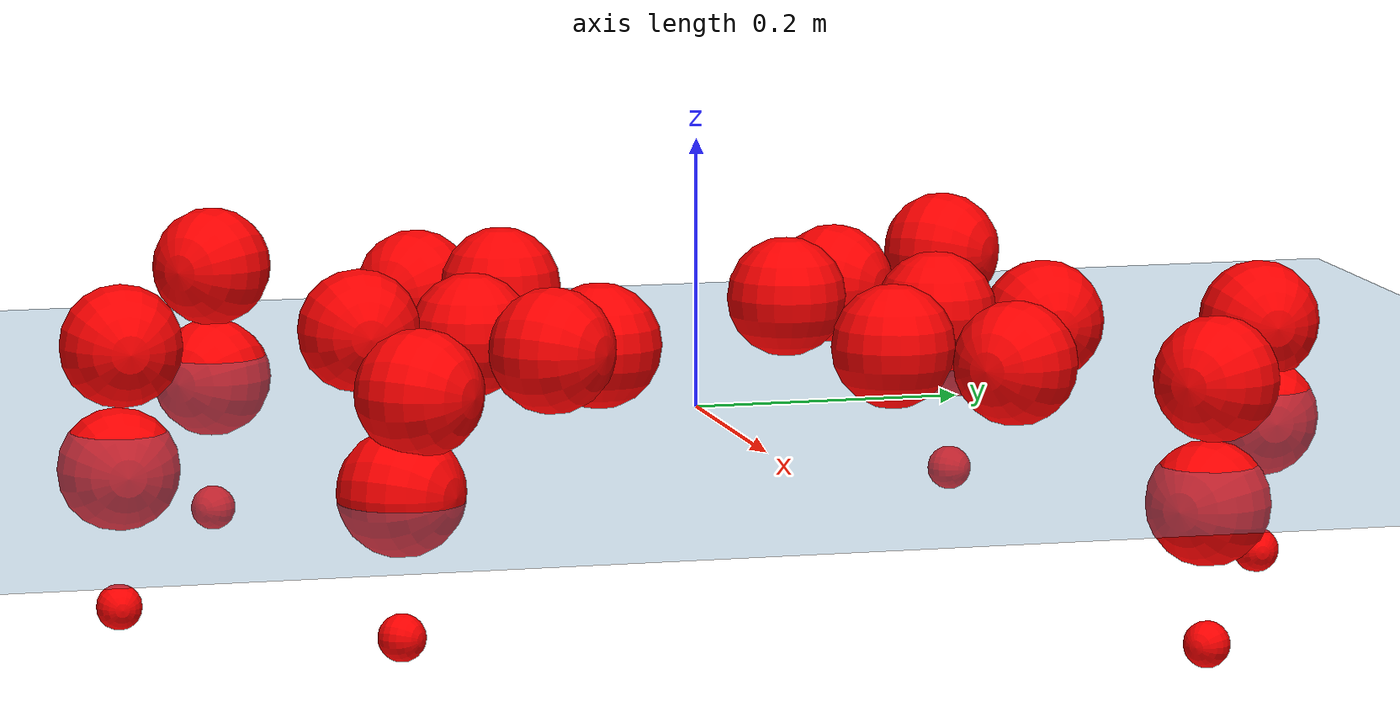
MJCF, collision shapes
<mujoco model="Golem">
  <compiler angle="radian" assetdir="assets" balanceinertia="true" inertiafromgeom="false"/>

  <option timestep="0.005" density="1.2" viscosity="2e-05"/>

  <size nkey="1"/>

  <visual>
    <quality shadowsize="8192"/>
    <map shadowclip="0.5"/>
  </visual>

  <default>
    <default class="/">
      <joint armature="0.01" damping="0.01" frictionloss="0.01"/>
      <geom contype="0" conaffinity="0" group="1" solref="-1000 -80"/>
      <site size="0.01 0.005 0.005" group="5"/>
      <general forcelimited="true" biastype="affine" gainprm="25" biasprm="0 -25 -0.5"/>
      <default class="visual">
        <geom type="mesh" group="2"/>
      </default>
      <default class="collision">
        <geom group="3"/>
      </default>
      <default class="foot">
        <geom size="0.01 0 0" condim="6" group="4" priority="1" solimp="0.015 1 0.01"/>
      </default>
      <default class="reward_collision_sphere">
        <geom group="5" rgba="1 0 0 1"/>
      </default>
    </default>
  </default>

  <asset>
    <texture type="skybox" colorspace="auto" name="//unnamed_texture_0" builtin="gradient" rgb1="0.95 0.95 0.95" rgb2="0.95 0.95 0.95" width="100" height="600"/>
    <texture type="2d" colorspace="auto" name="texplane" builtin="checker" rgb1="0.345 0.575 0.748" rgb2="0.345 0.575 0.748" markrgb="1 1 1" width="512" height="512"/>
    <material name="MatPlane" class="/" texture="texplane" texuniform="true" texrepeat="2 2" specular="0.9"/>
    <mesh name="body" class="/" file="body.stl" scale="0.001 0.001 0.001"/>
    <mesh name="coxa" class="/" file="coxa.stl" scale="0.001 0.001 0.001"/>
    <mesh name="femur" class="/" file="femur.stl" scale="0.001 0.001 0.001"/>
    <mesh name="tibia" class="/" file="tibia.stl" scale="0.001 0.001 0.001"/>
    <mesh name="tarsus" class="/" file="tarsus.stl" scale="0.001 0.001 0.001"/>
  </asset>

  <worldbody>
    <geom name="floor" class="/" size="100 100 0.125" type="plane" group="0" material="MatPlane"/>
    <light name="toplight_shadow" class="/" pos="0 0 5" dir="0.0990148 0.0990148 -0.990148" type="directional" ambient="0.04 0.04 0.04" diffuse="0.55 0.55 0.55" specular="0.12 0.12 0.12"/>
    <light name="toplight_fill" class="/" pos="0 0 5" dir="0.0990148 0.0990148 -0.990148" type="directional" castshadow="false" ambient="0.04 0.04 0.04" diffuse="0.3 0.3 0.3" specular="0.08 0.08 0.08"/>
    <body name="trunk" pos="0.00796694 0.00106667 0.00605327" quat="1 -0.000674931 -3.33354e-05 0.0001215">
      <inertial pos="0.00137771 0.00314743 0.0114103" quat="0.99828 -0.00591034 0.0445416 -0.0376559" mass="5.73255" diaginertia="0.00858285 0.0872934 0.00680633"/>
      <joint name="//unnamed_joint_0" type="free"/>
      <geom name="//unnamed_geom_1" class="/" pos="0 0 0.0585014" quat="1 0 0 0" type="mesh" rgba="0.9 0.9 0.9 1" mesh="body"/>
      <site name="imu" class="/" pos="0.0964051 0.0190345 0.119583" size="0.0113479"/>
      <camera name="track" class="/" pos="0 -3.07816 0" quat="0.707107 0.707107 0 0" mode="trackcom"/>
      <camera name="ego_camera" class="/" pos="0.123655 0 0.0914084" quat="-0.5 -0.5 0.5 0.5"/>
      <body name="coxa_RR" pos="-0.168764 -0.136847 0.0664299" quat="0.382752 -1.2685e-05 0.000770353 -0.923851">
        <inertial pos="0.00393907 0.00115719 0.00515949" quat="0.99931 -0.00601912 0.033447 0.0149855" mass="0.328474" diaginertia="0.00751899 0.094883 0.00714532"/>
        <joint name="coxa_joint_RR" class="/" pos="0 0 0" axis="0.00901821 0.0316209 -0.999459" range="-3.03662 2.90588" armature="0.0146238" damping="0.0152007" frictionloss="0.0151115"/>
        <geom name="//unnamed_geom_2" class="/" type="mesh" rgba="0.2 0.2 0.2 1" mesh="coxa"/>
        <geom name="//unnamed_geom_3" class="reward_collision_sphere" size="0.0453914" pos="-0.0285358 0 0"/>
        <body name="femur_RR" pos="0.0558527 -0.0134376 -0.0101706" quat="0.50041 -0.499923 0.49994 0.499727">
          <inertial pos="0.00450618 -0.0114557 -0.012992" quat="0.999954 0.00920256 -0.00219887 -0.0015256" mass="0.292073" diaginertia="0.00702245 0.0831319 0.00553093"/>
          <joint name="femur_joint_RR" class="/" pos="0 0 0" axis="-0.00353815 -0.0152619 -0.999877" stiffness="0.0133368" range="-3.1714 3.12828" armature="0.00925148" damping="0" frictionloss="0.00386478"/>
          <geom name="//unnamed_geom_4" class="/" type="mesh" rgba="0.9 0.9 0.9 1" mesh="femur"/>
          <geom name="//unnamed_geom_5" class="reward_collision_sphere" size="0.0453914"/>
          <body name="tibia_RR" pos="-0.00521368 -0.177741 0.0127981" quat="0.0001313 1 -5.07904e-05 -6.02926e-05">
            <inertial pos="-0.0063736 0.0119637 -0.00186057" quat="0.999999 -0.000168953 -0.000818863 -0.000895985" mass="0.277856" diaginertia="0.00795572 0.089153 0.00647169"/>
            <joint name="tibia_joint_RR" class="/" pos="0 0 0" axis="0.00933504 0.00665196 0.999934" range="-3.1318 3.12655" armature="0.0113964" damping="0" frictionloss="0.0155174"/>
            <geom name="//unnamed_geom_6" class="/" type="mesh" rgba="0.2 0.2 0.2 1" mesh="tibia"/>
            <geom name="//unnamed_geom_7" class="reward_collision_sphere" size="0.0453914"/>
            <body name="tarsus_RR" pos="0.0863555 0.000604411 6.70885e-05" quat="1 0.000102151 8.49531e-05 7.61532e-06">
              <inertial pos="0.0643324 0.000397646 0.000541037" quat="0.513138 0.518181 0.487929 0.479691" mass="0.261725" diaginertia="0.00672354 0.0898454 0.00629419"/>
              <joint name="tarsus_joint_RR" class="/" pos="0 0 0" axis="-0.00712466 -0.0154298 0.999856" stiffness="0.0021796" range="-2.88166 2.87074" armature="0.0115469" damping="0" frictionloss="0.0119662"/>
              <geom name="//unnamed_geom_8" class="/" type="mesh" rgba="0.9 0.9 0.9 1" mesh="tarsus"/>
              <geom name="foot_1" class="foot" size="0.00814586" pos="0.106533 0 0" quat="0 -0.707107 0 0.707107"/>
              <geom name="//unnamed_geom_10" class="reward_collision_sphere" size="0.0453914"/>
              <geom name="//unnamed_geom_11" class="reward_collision_sphere" size="0.0170218" pos="0.102253 0 0"/>
              <site name="foot_1" class="foot" pos="0.106533 0 0" quat="0 -0.707107 0 0.707107" size="0.0113479"/>
            </body>
          </body>
        </body>
      </body>
      <body name="coxa_RM" pos="0.0117643 -0.20443 0.0579639" quat="0.70553 -0.000471634 -0.00145171 -0.708679">
        <inertial pos="0.000495688 0.00692692 0.00163503" quat="0.998049 0.00293673 0.0596935 -0.0180844" mass="0.252929" diaginertia="0.00658495 0.0850013 0.00552159"/>
        <joint name="coxa_joint_RM" class="/" pos="0 0 0" axis="0.0158116 -0.00250331 -0.999872" stiffness="0.00263312" range="-3.09987 3.11184" armature="0.0121008" damping="0.00342906" frictionloss="0.011736"/>
        <geom name="//unnamed_geom_12" class="/" type="mesh" rgba="0.2 0.2 0.2 1" mesh="coxa"/>
        <geom name="//unnamed_geom_13" class="reward_collision_sphere" size="0.0453914" pos="-0.0285358 0 0"/>
        <body name="femur_RM" pos="0.0547812 -0.00203002 0.00546394" quat="0.503977 -0.500674 0.499212 0.496105">
          <inertial pos="0.0118449 0.0065759 0.0132593" quat="0.999998 -0.000570254 -0.000112312 0.00202195" mass="0.253583" diaginertia="0.00781081 0.085795 0.00591448"/>
          <joint name="femur_joint_RM" class="/" pos="0 0 0" axis="0.028311 -0.0128176 -0.999517" range="-3.19323 2.90869" armature="0.00913191" damping="0.0106878" frictionloss="0.0175388"/>
          <geom name="//unnamed_geom_14" class="/" type="mesh" rgba="0.9 0.9 0.9 1" mesh="femur"/>
          <geom name="//unnamed_geom_15" class="reward_collision_sphere" size="0.0453914"/>
          <body name="tibia_RM" pos="0.00893083 -0.173086 -0.0128933" quat="-0.00151299 0.999996 0.00244352 -0.000417213">
            <inertial pos="-0.00138337 -0.00304832 0.00028765" quat="1 0.000547668 -0.000208632 0.000432414" mass="0.276515" diaginertia="0.00661071 0.0746615 0.00597201"/>
            <joint name="tibia_joint_RM" class="/" pos="0 0 0" axis="-0.0385876 0.0437399 0.998297" stiffness="0.00917357" range="-3.22757 3.34743" armature="0.0117915" damping="0.0387466" frictionloss="0.00835532"/>
            <geom name="//unnamed_geom_16" class="/" type="mesh" rgba="0.2 0.2 0.2 1" mesh="tibia"/>
            <geom name="//unnamed_geom_17" class="reward_collision_sphere" size="0.0453914"/>
            <body name="tarsus_RM" pos="0.0923367 2.38618e-05 0.0114179" quat="1 0.00041399 0.000149687 -0.000172284">
              <inertial pos="0.0598168 0.00189835 -0.00800596" quat="0.468201 0.517295 0.488966 0.523551" mass="0.280134" diaginertia="0.00673515 0.081796 0.00704142"/>
              <joint name="tarsus_joint_RM" class="/" pos="0 0 0" axis="0.0181398 0.00832625 0.999801" stiffness="0.0245899" range="-2.92776 3.38323" armature="0.01086" damping="0.00138861" frictionloss="0.0128473"/>
              <geom name="//unnamed_geom_18" class="/" type="mesh" rgba="0.9 0.9 0.9 1" mesh="tarsus"/>
              <geom name="foot_2" class="foot" size="0.00982642" pos="0.106533 0 0" quat="0 -0.707107 0 0.707107"/>
              <geom name="//unnamed_geom_20" class="reward_collision_sphere" size="0.0453914"/>
              <geom name="//unnamed_geom_21" class="reward_collision_sphere" size="0.0170218" pos="0.102253 0 0"/>
              <site name="foot_2" class="foot" pos="0.106533 0 0" quat="0 -0.707107 0 0.707107" size="0.0113479"/>
            </body>
          </body>
        </body>
      </body>
      <body name="coxa_RF" pos="0.167863 -0.133131 0.0689045" quat="0.924186 -0.00206276 -0.00254696 -0.381928">
        <inertial pos="-0.00414534 0.0140118 -0.00197938" quat="0.999869 0.00515978 0.00684188 -0.0136965" mass="0.277583" diaginertia="0.00746659 0.0773439 0.00570294"/>
        <joint name="coxa_joint_RF" class="/" pos="0 0 0" axis="0.0191959 0.00176283 -0.999814" stiffness="0.015037" range="-3.13815 2.97428" armature="0.0114843" damping="0.051549" frictionloss="0.0105342"/>
        <geom name="//unnamed_geom_22" class="/" type="mesh" rgba="0.2 0.2 0.2 1" mesh="coxa"/>
        <geom name="//unnamed_geom_23" class="reward_collision_sphere" size="0.0453914" pos="-0.0285358 0 0"/>
        <body name="femur_RF" pos="0.0443854 0.00545394 0.00652507" quat="0.499949 -0.500086 0.499574 0.50039">
          <inertial pos="-0.000946342 -0.000186699 -0.0094145" quat="0.999889 0.0103159 -0.00964554 -0.00483939" mass="0.298532" diaginertia="0.00765261 0.0924603 0.00581742"/>
          <joint name="femur_joint_RF" class="/" pos="0 0 0" axis="-0.00493003 -0.00160413 -0.999987" range="-3.37125 3.09459" armature="0.0124893" damping="0.0190371" frictionloss="0.0162915"/>
          <geom name="//unnamed_geom_24" class="/" type="mesh" rgba="0.9 0.9 0.9 1" mesh="femur"/>
          <geom name="//unnamed_geom_25" class="reward_collision_sphere" size="0.0453914"/>
          <body name="tibia_RF" pos="0.00783328 -0.167187 -0.00541119" quat="-3.33832e-05 1 -0.000693675 -0.000554555">
            <inertial pos="-0.00803874 0.00585621 -0.000499639" quat="0.998043 0.0574175 0.00951126 -0.022872" mass="0.269134" diaginertia="0.00802458 0.0947606 0.00624008"/>
            <joint name="tibia_joint_RF" class="/" pos="0 0 0" axis="-0.0135583 -0.0432181 0.998974" range="-3.14532 3.1288" armature="0.0103189" damping="0" frictionloss="0.0112837"/>
            <geom name="//unnamed_geom_26" class="/" type="mesh" rgba="0.2 0.2 0.2 1" mesh="tibia"/>
            <geom name="//unnamed_geom_27" class="reward_collision_sphere" size="0.0453914"/>
            <body name="tarsus_RF" pos="0.0705567 0.000760954 0.0140647" quat="0.999995 0.00020308 0.00104208 -0.00308187">
              <inertial pos="0.052088 0.010283 -0.00341691" quat="0.499112 0.486274 0.511321 0.502967" mass="0.343273" diaginertia="0.00806535 0.0985602 0.00600917"/>
              <joint name="tarsus_joint_RF" class="/" pos="0 0 0" axis="0.0431511 -0.022711 0.99881" stiffness="0.0079266" range="-2.96075 3.13105" armature="0.0111263" damping="0" frictionloss="0.0131987"/>
              <geom name="//unnamed_geom_28" class="/" type="mesh" rgba="0.9 0.9 0.9 1" mesh="tarsus"/>
              <geom name="foot_3" class="foot" size="0.0107257" pos="0.106533 0 0" quat="0 -0.707107 0 0.707107"/>
              <geom name="//unnamed_geom_30" class="reward_collision_sphere" size="0.0453914"/>
              <geom name="//unnamed_geom_31" class="reward_collision_sphere" size="0.0170218" pos="0.102253 0 0"/>
              <site name="foot_3" class="foot" pos="0.106533 0 0" quat="0 -0.707107 0 0.707107" size="0.0113479"/>
            </body>
          </body>
        </body>
      </body>
      <body name="coxa_LR" pos="-0.172194 0.126933 0.0502711" quat="0.380441 -0.00121573 -6.32689e-05 0.924804">
        <inertial pos="0.0017181 0.00210661 -0.0102962" quat="1 -0.000345841 -0.000132579 -0.000624533" mass="0.288329" diaginertia="0.00752318 0.0818869 0.00697925"/>
        <joint name="coxa_joint_LR" class="/" pos="0 0 0" axis="0.00213346 0.00332686 -0.999992" stiffness="0.0449214" range="-3.02784 3.06446" armature="0.0141676" damping="0.0298449" frictionloss="0.0181213"/>
        <geom name="//unnamed_geom_32" class="/" type="mesh" rgba="0.2 0.2 0.2 1" mesh="coxa"/>
        <geom name="//unnamed_geom_33" class="reward_collision_sphere" size="0.0453914" pos="-0.0285358 0 0"/>
        <body name="femur_LR" pos="0.0592426 0.00787217 -0.00177676" quat="0.49898 -0.500191 0.500657 0.500171">
          <inertial pos="-0.0109714 0.00502437 -0.00862254" quat="0.999793 -0.019941 0.000380044 -0.00391525" mass="0.336314" diaginertia="0.00762585 0.0862461 0.00631375"/>
          <joint name="femur_joint_LR" class="/" pos="0 0 0" axis="0.00655177 -0.0106661 0.999922" range="-2.8801 3.36914" armature="0.0180306" damping="0.0090602" frictionloss="0.0120714"/>
          <geom name="//unnamed_geom_34" class="/" type="mesh" rgba="0.9 0.9 0.9 1" mesh="femur"/>
          <geom name="//unnamed_geom_35" class="reward_collision_sphere" size="0.0453914"/>
          <body name="tibia_LR" pos="-0.00430427 -0.170001 -0.00246017" quat="-0.00236204 0.999995 5.28564e-05 0.00191181">
            <inertial pos="-0.00628565 0.00896144 -0.00194724" quat="0.999977 0.00204473 -0.00034298 -0.00645038" mass="0.254801" diaginertia="0.00745206 0.074455 0.00687911"/>
            <joint name="tibia_joint_LR" class="/" pos="0 0 0" axis="-0.0500809 -0.0171173 -0.998598" stiffness="0.0312162" range="-3.15537 3.34166" armature="0.0136711" damping="0" frictionloss="0.0121614"/>
            <geom name="//unnamed_geom_36" class="/" type="mesh" rgba="0.2 0.2 0.2 1" mesh="tibia"/>
            <geom name="//unnamed_geom_37" class="reward_collision_sphere" size="0.0453914"/>
            <body name="tarsus_LR" pos="0.0711878 0.00223961 0.00767639" quat="0.999983 -0.00537748 0.00101902 -0.0019594">
              <inertial pos="0.0671871 0.00956873 0.00328733" quat="0.499103 0.500129 0.500738 0.50003" mass="0.294903" diaginertia="0.00783152 0.0986824 0.00587423"/>
              <joint name="tarsus_joint_LR" class="/" pos="0 0 0" axis="-8.66327e-05 -0.00349176 -0.999994" stiffness="0.0353771" range="-3.1581 3.15372" armature="0.00854333" damping="0.00526022" frictionloss="0.00517591"/>
              <geom name="//unnamed_geom_38" class="/" type="mesh" rgba="0.9 0.9 0.9 1" mesh="tarsus"/>
              <geom name="foot_4" class="foot" size="0.0113611" pos="0.106533 0 0" quat="0.707107 0 -0.707107 0"/>
              <geom name="//unnamed_geom_40" class="reward_collision_sphere" size="0.0453914"/>
              <geom name="//unnamed_geom_41" class="reward_collision_sphere" size="0.0170218" pos="0.102253 0 0"/>
              <site name="foot_4" class="foot" pos="0.106533 0 0" quat="0.707107 0 -0.707107 0" size="0.0113479"/>
            </body>
          </body>
        </body>
      </body>
      <body name="coxa_LM" pos="0.00449682 0.207739 0.0597372" quat="0.70627 0.000285654 -0.000433129 0.707942">
        <inertial pos="-0.0106136 3.2376e-05 -0.00386206" quat="0.999794 -0.0183262 -0.000568808 0.00865357" mass="0.331732" diaginertia="0.00732024 0.0982017 0.00746597"/>
        <joint name="coxa_joint_LM" class="/" pos="0 0 0" axis="0.0101435 -0.0045483 -0.999938" range="-3.15199 3.13983" armature="0.0116743" damping="0.0378065" frictionloss="0.0153652"/>
        <geom name="//unnamed_geom_42" class="/" type="mesh" rgba="0.2 0.2 0.2 1" mesh="coxa"/>
        <geom name="//unnamed_geom_43" class="reward_collision_sphere" size="0.0453914" pos="-0.0285358 0 0"/>
        <body name="femur_LM" pos="0.0550349 -0.000489995 -0.00950728" quat="0.499761 -0.500137 0.499991 0.500111">
          <inertial pos="-0.00734157 0.00102651 0.00625637" quat="0.999839 -0.00424364 0.016989 -0.00383355" mass="0.276006" diaginertia="0.00819402 0.0775847 0.00499253"/>
          <joint name="femur_joint_LM" class="/" pos="0 0 0" axis="-0.0550814 0.0259795 0.998144" stiffness="0.00981958" range="-3.37487 3.24783" armature="0.0122146" damping="0.075624" frictionloss="0.0114917"/>
          <geom name="//unnamed_geom_44" class="/" type="mesh" rgba="0.9 0.9 0.9 1" mesh="femur"/>
          <geom name="//unnamed_geom_45" class="reward_collision_sphere" size="0.0453914"/>
          <body name="tibia_LM" pos="0.00676293 -0.169466 0.000149013" quat="0.00171794 0.999999 -0.000126032 -1.13411e-05">
            <inertial pos="0.0118492 0.000190746 0.000593527" quat="0.999837 0.00612978 0.00517697 0.0161999" mass="0.287006" diaginertia="0.00769683 0.0876209 0.00587312"/>
            <joint name="tibia_joint_LM" class="/" pos="0 0 0" axis="-0.00468181 -0.000345072 -0.999989" range="-3.20152 3.2471" armature="0.016062" damping="0" frictionloss="0.0191876"/>
            <geom name="//unnamed_geom_46" class="/" type="mesh" rgba="0.2 0.2 0.2 1" mesh="tibia"/>
            <geom name="//unnamed_geom_47" class="reward_collision_sphere" size="0.0453914"/>
            <body name="tarsus_LM" pos="0.0719921 -0.00168013 0.00394175" quat="0.999998 0.000192601 -0.00183776 -0.00018247">
              <inertial pos="0.0665663 -0.000614186 0.00737003" quat="0.53429 0.46784 0.510998 0.484293" mass="0.285641" diaginertia="0.00815846 0.0862087 0.00665414"/>
              <joint name="tarsus_joint_LM" class="/" pos="0 0 0" axis="-0.00763302 0.00236373 -0.999968" stiffness="0.00247315" range="-3.31844 3.13902" armature="0.00922762" damping="0" frictionloss="0.01127"/>
              <geom name="//unnamed_geom_48" class="/" type="mesh" rgba="0.9 0.9 0.9 1" mesh="tarsus"/>
              <geom name="foot_5" class="foot" size="0.00543238" pos="0.106533 0 0" quat="0.707107 0 -0.707107 0"/>
              <geom name="//unnamed_geom_50" class="reward_collision_sphere" size="0.0453914"/>
              <geom name="//unnamed_geom_51" class="reward_collision_sphere" size="0.0170218" pos="0.102253 0 0"/>
              <site name="foot_5" class="foot" pos="0.106533 0 0" quat="0.707107 0 -0.707107 0" size="0.0113479"/>
            </body>
          </body>
        </body>
      </body>
      <body name="coxa_LF" pos="0.166553 0.126376 0.0594391" quat="0.923074 0.000233921 -0.000743532 0.384621">
        <inertial pos="0.000136788 0.0128685 0.00316097" quat="0.998526 -0.0541025 0.00434105 -0.000141461" mass="0.233865" diaginertia="0.00641076 0.0738182 0.0054272"/>
        <joint name="coxa_joint_LF" class="/" pos="0 0 0" axis="-0.0102403 0.0328295 -0.999409" stiffness="0.0436234" range="-3.31275 3.14273" armature="0.00793772" damping="0" frictionloss="0.0169598"/>
        <geom name="//unnamed_geom_52" class="/" type="mesh" rgba="0.2 0.2 0.2 1" mesh="coxa"/>
        <geom name="//unnamed_geom_53" class="reward_collision_sphere" size="0.0453914" pos="-0.0285358 0 0"/>
        <body name="femur_LF" pos="0.0673357 0.00798807 -0.00564607" quat="0.50027 -0.50051 0.499085 0.500134">
          <inertial pos="0.00269002 -0.0076135 0.0106323" quat="0.999922 0.00649412 0.0013547 -0.0105355" mass="0.270806" diaginertia="0.00676584 0.0776961 0.00649139"/>
          <joint name="femur_joint_LF" class="/" pos="0 0 0" axis="-0.00324883 -0.0137552 0.9999" stiffness="0.0650092" range="-3.09746 3.13295" armature="0.00693334" damping="0.00848423" frictionloss="0.0121684"/>
          <geom name="//unnamed_geom_54" class="/" type="mesh" rgba="0.9 0.9 0.9 1" mesh="femur"/>
          <geom name="//unnamed_geom_55" class="reward_collision_sphere" size="0.0453914"/>
          <body name="tibia_LF" pos="-0.00121599 -0.158903 0.00338371" quat="0.000169582 1 -0.000233187 -0.000203321">
            <inertial pos="-0.0116895 -0.0117613 -0.0133591" quat="0.999819 -0.00234101 -0.0146384 -0.0118949" mass="0.296612" diaginertia="0.0079169 0.0793476 0.00539892"/>
            <joint name="tibia_joint_LF" class="/" pos="0 0 0" axis="0.0242744 -0.0034835 -0.999699" range="-3.30012 3.37326" armature="0.0124524" damping="0.0133765" frictionloss="0.015587"/>
            <geom name="//unnamed_geom_56" class="/" type="mesh" rgba="0.2 0.2 0.2 1" mesh="tibia"/>
            <geom name="//unnamed_geom_57" class="reward_collision_sphere" size="0.0453914"/>
            <body name="tarsus_LF" pos="0.0906319 -0.0075645 -0.00377363" quat="1 0.000351759 2.39848e-05 -0.000632031">
              <inertial pos="0.064996 0.00303535 -0.0116835" quat="0.457156 0.508311 0.516448 0.515664" mass="0.290747" diaginertia="0.00680867 0.0889472 0.00538958"/>
              <joint name="tarsus_joint_LF" class="/" pos="0 0 0" axis="-0.00036832 -0.00104802 -0.999999" range="-2.93754 3.38079" armature="0.00734437" damping="0" frictionloss="0.00762076"/>
              <geom name="//unnamed_geom_58" class="/" type="mesh" rgba="0.9 0.9 0.9 1" mesh="tarsus"/>
              <geom name="foot_6" class="foot" size="0.00808222" pos="0.106533 0 0" quat="0.707107 0 -0.707107 0"/>
              <geom name="//unnamed_geom_60" class="reward_collision_sphere" size="0.0453914"/>
              <geom name="//unnamed_geom_61" class="reward_collision_sphere" size="0.0170218" pos="0.102253 0 0"/>
              <site name="foot_6" class="foot" pos="0.106533 0 0" quat="0.707107 0 -0.707107 0" size="0.0113479"/>
            </body>
          </body>
        </body>
      </body>
    </body>
  </worldbody>

  <contact>
    <pair class="/" geom1="floor" geom2="foot_1" name="//unnamed_contact_0"/>
    <pair class="/" geom1="floor" geom2="foot_2" name="//unnamed_contact_1"/>
    <pair class="/" geom1="floor" geom2="foot_3" name="//unnamed_contact_2"/>
    <pair class="/" geom1="floor" geom2="foot_4" name="//unnamed_contact_3"/>
    <pair class="/" geom1="floor" geom2="foot_5" name="//unnamed_contact_4"/>
    <pair class="/" geom1="floor" geom2="foot_6" name="//unnamed_contact_5"/>
  </contact>

  <actuator>
    <general name="coxa_joint_RR" class="/" joint="coxa_joint_RR" forcerange="-8.98829 8.98829" gainprm="19.0215" biasprm="0 -19.0215 -0.567014"/>
    <general name="femur_joint_RR" class="/" joint="femur_joint_RR" forcerange="-8.71308 8.71308" gainprm="19.0215" biasprm="0 -19.0215 -0.567014"/>
    <general name="tibia_joint_RR" class="/" joint="tibia_joint_RR" forcerange="-8.30907 8.30907" gainprm="19.0215" biasprm="0 -19.0215 -0.567014"/>
    <general name="tarsus_joint_RR" class="/" joint="tarsus_joint_RR" forcerange="-8.28925 8.28925" gainprm="19.0215" biasprm="0 -19.0215 -0.567014"/>
    <general name="coxa_joint_RM" class="/" joint="coxa_joint_RM" forcerange="-8.24342 8.24342" gainprm="19.0215" biasprm="0 -19.0215 -0.567014"/>
    <general name="femur_joint_RM" class="/" joint="femur_joint_RM" forcerange="-8.70992 8.70992" gainprm="19.0215" biasprm="0 -19.0215 -0.567014"/>
    <general name="tibia_joint_RM" class="/" joint="tibia_joint_RM" forcerange="-8.01074 8.01074" gainprm="19.0215" biasprm="0 -19.0215 -0.567014"/>
    <general name="tarsus_joint_RM" class="/" joint="tarsus_joint_RM" forcerange="-11.0531 11.0531" gainprm="19.0215" biasprm="0 -19.0215 -0.567014"/>
    <general name="coxa_joint_RF" class="/" joint="coxa_joint_RF" forcerange="-8.21418 8.21418" gainprm="19.0215" biasprm="0 -19.0215 -0.567014"/>
    <general name="femur_joint_RF" class="/" joint="femur_joint_RF" forcerange="-8.42669 8.42669" gainprm="19.0215" biasprm="0 -19.0215 -0.567014"/>
    <general name="tibia_joint_RF" class="/" joint="tibia_joint_RF" forcerange="-8.42028 8.42028" gainprm="19.0215" biasprm="0 -19.0215 -0.567014"/>
    <general name="tarsus_joint_RF" class="/" joint="tarsus_joint_RF" forcerange="-9.09378 9.09378" gainprm="19.0215" biasprm="0 -19.0215 -0.567014"/>
    <general name="coxa_joint_LR" class="/" joint="coxa_joint_LR" forcerange="-9.51482 9.51482" gainprm="19.0215" biasprm="0 -19.0215 -0.567014"/>
    <general name="femur_joint_LR" class="/" joint="femur_joint_LR" forcerange="-11.4705 11.4705" gainprm="19.0215" biasprm="0 -19.0215 -0.567014"/>
    <general name="tibia_joint_LR" class="/" joint="tibia_joint_LR" forcerange="-7.91138 7.91138" gainprm="19.0215" biasprm="0 -19.0215 -0.567014"/>
    <general name="tarsus_joint_LR" class="/" joint="tarsus_joint_LR" forcerange="-8.28748 8.28748" gainprm="19.0215" biasprm="0 -19.0215 -0.567014"/>
    <general name="coxa_joint_LM" class="/" joint="coxa_joint_LM" forcerange="-7.88885 7.88885" gainprm="19.0215" biasprm="0 -19.0215 -0.567014"/>
    <general name="femur_joint_LM" class="/" joint="femur_joint_LM" forcerange="-10.0371 10.0371" gainprm="19.0215" biasprm="0 -19.0215 -0.567014"/>
    <general name="tibia_joint_LM" class="/" joint="tibia_joint_LM" forcerange="-8.40916 8.40916" gainprm="19.0215" biasprm="0 -19.0215 -0.567014"/>
    <general name="tarsus_joint_LM" class="/" joint="tarsus_joint_LM" forcerange="-6.17446 6.17446" gainprm="19.0215" biasprm="0 -19.0215 -0.567014"/>
    <general name="coxa_joint_LF" class="/" joint="coxa_joint_LF" forcerange="-9.35146 9.35146" gainprm="19.0215" biasprm="0 -19.0215 -0.567014"/>
    <general name="femur_joint_LF" class="/" joint="femur_joint_LF" forcerange="-5.63017 5.63017" gainprm="19.0215" biasprm="0 -19.0215 -0.567014"/>
    <general name="tibia_joint_LF" class="/" joint="tibia_joint_LF" forcerange="-8.20345 8.20345" gainprm="19.0215" biasprm="0 -19.0215 -0.567014"/>
    <general name="tarsus_joint_LF" class="/" joint="tarsus_joint_LF" forcerange="-12.5322 12.5322" gainprm="19.0215" biasprm="0 -19.0215 -0.567014"/>
  </actuator>

  <sensor>
    <gyro site="imu" name="imu_angular_velocity"/>
    <velocimeter site="imu" name="imu_linear_velocity"/>
    <framelinvel objtype="site" objname="foot_1" name="foot_1_global_linear_velocity"/>
    <framelinvel objtype="site" objname="foot_2" name="foot_2_global_linear_velocity"/>
    <framelinvel objtype="site" objname="foot_3" name="foot_3_global_linear_velocity"/>
    <framelinvel objtype="site" objname="foot_4" name="foot_4_global_linear_velocity"/>
    <framelinvel objtype="site" objname="foot_5" name="foot_5_global_linear_velocity"/>
    <framelinvel objtype="site" objname="foot_6" name="foot_6_global_linear_velocity"/>
  </sensor>

  <keyframe>
    <key name="home" qpos="0 0 0.1457 1 0 0 0 0 0 0 0 0 0 0 0 0 0 0 0 0 0 0 0 0 0 0 0 0 0 0 0"/>
  </keyframe>
</mujoco>
